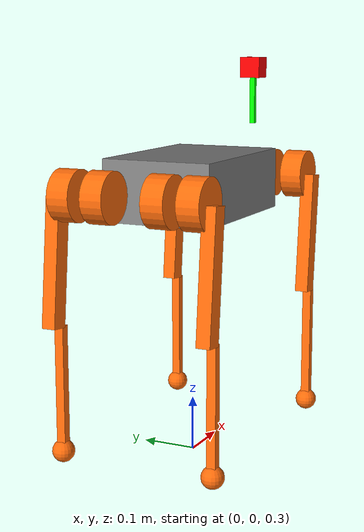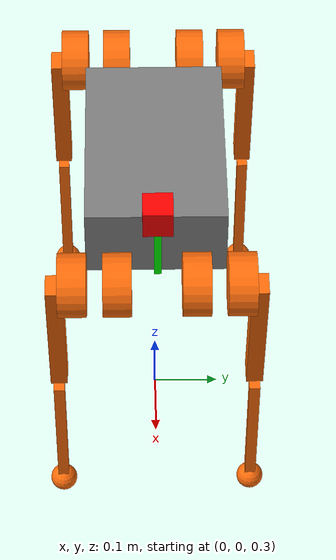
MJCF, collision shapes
<mujoco model="sduog48">
    <compiler angle="radian" meshdir="meshes/"/>
    <option gravity='0 0 -9.81' solver='PGS'/>
    <size njmax="500" nconmax="100" />
    <asset>
        <mesh name="trunk" file="trunk.stl" />
        <mesh name="hip" file="hip.stl" />
        <mesh name="thigh_mirror" file="thigh_mirror.stl" />
        <mesh name="calf" file="calf.stl" />
        <mesh name="thigh" file="thigh.stl" />
    </asset>
    <worldbody>
        <body name="trunk" pos="0 0 0.8">
            <camera name="depth_cam"
                pos="0.28 0.0 0.2"        euler="0 -0.349 0"
                fovy="79.3"
                mode="fixed"/>
            <body name="cam_visualizer" pos="0.28 0.0 0.2" euler="0 0 0">
                <geom type="box" size="0.02 0.02 0.02" rgba="1 0 0 1"/>
                <geom type="box" size="0.005 0.005 0.05" pos="0 0 -0.06" rgba="0 1 0 1"/>
            </body>
            <inertial pos="-0.00998573 0.00199715 -0.00499287" quat="0.00436269 0.709939 -0.00785922 0.704206" mass="7.01" diaginertia="0.124184 0.107012 0.0303102" />
            <joint name="floating_base_joint" type="free" />
            <geom type="mesh" contype="0" conaffinity="0" group="1" mesh="trunk" />
            <geom size="0.1505 0.1 0.055" type="box" />
            <geom size="0.0075 0.0075 0.002" type="box" contype="0" conaffinity="0" group="1" />

            <body name="FL_hip" pos="0.226 0.055 0">
                <inertial pos="-0.003311 0.000635 3.1e-05" quat="0.689413 0.153534 0.154338 0.690882" mass="0.75" diaginertia="0.000775212 0.000502914 0.000502055" />
                <joint name="FL_hip_joint" pos="0 0 0" axis="1 0 0" limited="true" range="-1.0472 1.0472" />
                <geom type="mesh" contype="0" conaffinity="0" group="1" rgba="1 0.423529 0.0392157 1" mesh="hip" />
                <geom size="0.045 0.02" quat="0.707107 0.707107 0 0" type="cylinder" rgba="1 0.423529 0.0392157 1" />
                <body name="FL_thigh" pos="0 0.0875 0">
                    <inertial pos="-0.002 -0.023 -0.0263" quat="0.73046 0.0868634 -0.0316401 0.676669" mass="1.25" diaginertia="0.00545464 0.00531835 0.000942016" />
                    <joint name="FL_thigh_joint" pos="0 0 0" axis="0 -1 0" limited="true" range="-3.14159 1.0472" />
                    <geom type="mesh" contype="0" conaffinity="0" group="1" rgba="1 0.423529 0.0392157 1" mesh="thigh" />
                    <geom size="0.1125 0.01225 0.017" pos="-0.012 0 -0.1125" quat="0.670882 0 0.741564 0" type="box" rgba="1 0.423529 0.0392157 1" />
                    <geom size="0.045 0.02" pos="0 -0.025 0" quat="0.707107 0.707107 0 0" type="cylinder" rgba="1 0.423529 0.0392157 1" />
                    <body name="FL_calf" pos="0 0 -0.225">
                        <inertial pos="0.00909091 0 -0.108636" quat="0.705775 0.0433718 0.0433718 0.705775" mass="0.22" diaginertia="0.00183194 0.00181008 4.5767e-05" />
                        <joint name="FL_calf_joint" pos="0 0 0" axis="0 -1 0" limited="true" range="0.916298 2.69653" />
                        <geom type="mesh" contype="0" conaffinity="0" group="1" rgba="1 0.423529 0.0392157 1" mesh="calf" />
                        <geom size="0.1125 0.008 0.008" pos="0 0 -0.1125" quat="0.707107 0 0.707107 0" type="box" rgba="1 0.423529 0.0392157 1" />
                        <geom size="0.01" pos="0 0 -0.225" contype="0" conaffinity="0" group="1" rgba="1 0.423529 0.0392157 1" />
                        <geom size="0.02" pos="0 0 -0.225" rgba="1 0.423529 0.0392157 1" />
                    </body>
                </body>
            </body>
            <body name="FR_hip" pos="0.226 -0.055 0">
                <inertial pos="-0.003311 -0.000635 3.1e-05" quat="0.690882 0.154338 0.153534 0.689413" mass="0.75" diaginertia="0.000775212 0.000502914 0.000502055" />
                <joint name="FR_hip_joint" pos="0 0 0" axis="1 0 0" limited="true" range="-1.0472 1.0472" />
                <geom quat="0 1 0 0" type="mesh" contype="0" conaffinity="0" group="1" rgba="1 0.423529 0.0392157 1" mesh="hip" />
                <geom size="0.045 0.02" quat="0.707107 0.707107 0 0" type="cylinder" rgba="1 0.423529 0.0392157 1" />
                <body name="FR_thigh" pos="0 -0.0875 0">
                    <inertial pos="-0.002 0.023 -0.0263" quat="0.676669 -0.0316401 0.0868634 0.73046" mass="1.25" diaginertia="0.00545464 0.00531835 0.000942016" />
                    <joint name="FR_thigh_joint" pos="0 0 0" axis="0 -1 0" limited="true" range="-3.14159 1.0472" />
                    <geom type="mesh" contype="0" conaffinity="0" group="1" rgba="1 0.423529 0.0392157 1" mesh="thigh_mirror" />
                    <geom size="0.1125 0.01225 0.017" pos="-0.012 0 -0.1125" quat="0.670882 0 0.741564 0" type="box" rgba="1 0.423529 0.0392157 1" />
                    <geom size="0.045 0.02" pos="0 0.025 0" quat="0.707107 0.707107 0 0" type="cylinder" rgba="1 0.423529 0.0392157 1" />
                    <body name="FR_calf" pos="0 0 -0.225">
                        <inertial pos="0.00909091 0 -0.108636" quat="0.705775 0.0433718 0.0433718 0.705775" mass="0.22" diaginertia="0.00183194 0.00181008 4.5767e-05" />
                        <joint name="FR_calf_joint" pos="0 0 0" axis="0 -1 0" limited="true" range="0.916298 2.69653" />
                        <geom type="mesh" contype="0" conaffinity="0" group="1" rgba="1 0.423529 0.0392157 1" mesh="calf" />
                        <geom size="0.1125 0.008 0.008" pos="0 0 -0.1125" quat="0.707107 0 0.707107 0" type="box" rgba="1 0.423529 0.0392157 1" />
                        <geom size="0.01" pos="0 0 -0.225" contype="0" conaffinity="0" group="1" rgba="1 0.423529 0.0392157 1" />
                        <geom size="0.02" pos="0 0 -0.225" rgba="1 0.423529 0.0392157 1" />
                    </body>
                </body>
            </body>
            <body name="RL_hip" pos="-0.226 0.055 0">
                <inertial pos="0.003311 0.000635 3.1e-05" quat="0.690882 -0.154338 -0.153534 0.689413" mass="0.75" diaginertia="0.000775212 0.000502914 0.000502055" />
                <joint name="RL_hip_joint" pos="0 0 0" axis="1 0 0" limited="true" range="-1.0472 1.0472" />
                <geom quat="0 0 1 0" type="mesh" contype="0" conaffinity="0" group="1" rgba="1 0.423529 0.0392157 1" mesh="hip" />
                <geom size="0.045 0.02" quat="0.707107 0.707107 0 0" type="cylinder" rgba="1 0.423529 0.0392157 1" />
                <body name="RL_thigh" pos="0 0.0875 0">
                    <inertial pos="-0.002 -0.023 -0.0263" quat="0.73046 0.0868634 -0.0316401 0.676669" mass="1.25" diaginertia="0.00545464 0.00531835 0.000942016" />
                    <joint name="RL_thigh_joint" pos="0 0 0" axis="0 -1 0" limited="true" range="-3.14159 1.0472" />
                    <geom type="mesh" contype="0" conaffinity="0" group="1" rgba="1 0.423529 0.0392157 1" mesh="thigh" />
                    <geom size="0.1125 0.01225 0.017" pos="-0.012 0 -0.1125" quat="0.670882 0 0.741564 0" type="box" rgba="1 0.423529 0.0392157 1" />
                    <geom size="0.045 0.02" pos="0 -0.025 0" quat="0.707107 0.707107 0 0" type="cylinder" rgba="1 0.423529 0.0392157 1" />
                    <body name="RL_calf" pos="0 0 -0.225">
                        <inertial pos="0.00909091 0 -0.108636" quat="0.705775 0.0433718 0.0433718 0.705775" mass="0.22" diaginertia="0.00183194 0.00181008 4.5767e-05" />
                        <joint name="RL_calf_joint" pos="0 0 0" axis="0 -1 0" limited="true" range="0.916298 2.69653" />
                        <geom type="mesh" contype="0" conaffinity="0" group="1" rgba="1 0.423529 0.0392157 1" mesh="calf" />
                        <geom size="0.1125 0.008 0.008" pos="0 0 -0.1125" quat="0.707107 0 0.707107 0" type="box" rgba="1 0.423529 0.0392157 1" />
                        <geom size="0.01" pos="0 0 -0.225" contype="0" conaffinity="0" group="1" rgba="1 0.423529 0.0392157 1" />
                        <geom size="0.02" pos="0 0 -0.225" rgba="1 0.423529 0.0392157 1" />
                    </body>
                </body>
            </body>
            <body name="RR_hip" pos="-0.226 -0.055 0">
                <inertial pos="0.003311 -0.000635 3.1e-05" quat="0.689413 -0.153534 -0.154338 0.690882" mass="0.75" diaginertia="0.000775212 0.000502914 0.000502055" />
                <joint name="RR_hip_joint" pos="0 0 0" axis="1 0 0" limited="true" range="-1.0472 1.0472" />
                <geom quat="0 0 0 -1" type="mesh" contype="0" conaffinity="0" group="1" rgba="1 0.423529 0.0392157 1" mesh="hip" />
                <geom size="0.045 0.02" quat="0.707107 0.707107 0 0" type="cylinder" rgba="1 0.423529 0.0392157 1" />
                <body name="RR_thigh" pos="0 -0.0875 0">
                    <inertial pos="-0.002 0.023 -0.0263" quat="0.676669 -0.0316401 0.0868634 0.73046" mass="1.25" diaginertia="0.00545464 0.00531835 0.000942016" />
                    <joint name="RR_thigh_joint" pos="0 0 0" axis="0 -1 0" limited="true" range="-3.14159 1.0472" />
                    <geom type="mesh" contype="0" conaffinity="0" group="1" rgba="1 0.423529 0.0392157 1" mesh="thigh_mirror" />
                    <geom size="0.1125 0.01225 0.017" pos="-0.012 0 -0.1125" quat="0.670882 0 0.741564 0" type="box" rgba="1 0.423529 0.0392157 1" />
                    <geom size="0.045 0.02" pos="0 0.025 0" quat="0.707107 0.707107 0 0" type="cylinder" rgba="1 0.423529 0.0392157 1" />
                    <body name="RR_calf" pos="0 0 -0.225">
                        <inertial pos="0.00909091 0 -0.108636" quat="0.705775 0.0433718 0.0433718 0.705775" mass="0.22" diaginertia="0.00183194 0.00181008 4.5767e-05" />
                        <joint name="RR_calf_joint" pos="0 0 0" axis="0 -1 0" limited="true" range="0.916298 2.69653" />
                        <geom type="mesh" contype="0" conaffinity="0" group="1" rgba="1 0.423529 0.0392157 1" mesh="calf" />
                        <geom size="0.1125 0.008 0.008" pos="0 0 -0.1125" quat="0.707107 0 0.707107 0" type="box" rgba="1 0.423529 0.0392157 1" />
                        <geom size="0.01" pos="0 0 -0.225" contype="0" conaffinity="0" group="1" rgba="1 0.423529 0.0392157 1" />
                        <geom size="0.02" pos="0 0 -0.225" rgba="1 0.423529 0.0392157 1" />
                    </body>
                </body>
            </body>

        </body>
    </worldbody>

<actuator>
    <motor name="FL_hip" joint="FL_hip_joint" />
    <motor name="FL_thigh" joint="FL_thigh_joint" />
    <motor name="FL_calf" joint="FL_calf_joint" />
    <motor name="FR_hip" joint="FR_hip_joint"/>
    <motor name="FR_thigh" joint="FR_thigh_joint" />
    <motor name="FR_calf" joint="FR_calf_joint"/>
    <motor name="RL_hip" joint="RL_hip_joint" />
    <motor name="RL_thigh" joint="RL_thigh_joint" />
    <motor name="RL_calf" joint="RL_calf_joint" />
    <motor name="RR_hip" joint="RR_hip_joint" />
    <motor name="RR_thigh" joint="RR_thigh_joint" />
    <motor name="RR_calf" joint="RR_calf_joint"/>
</actuator>
</mujoco>
